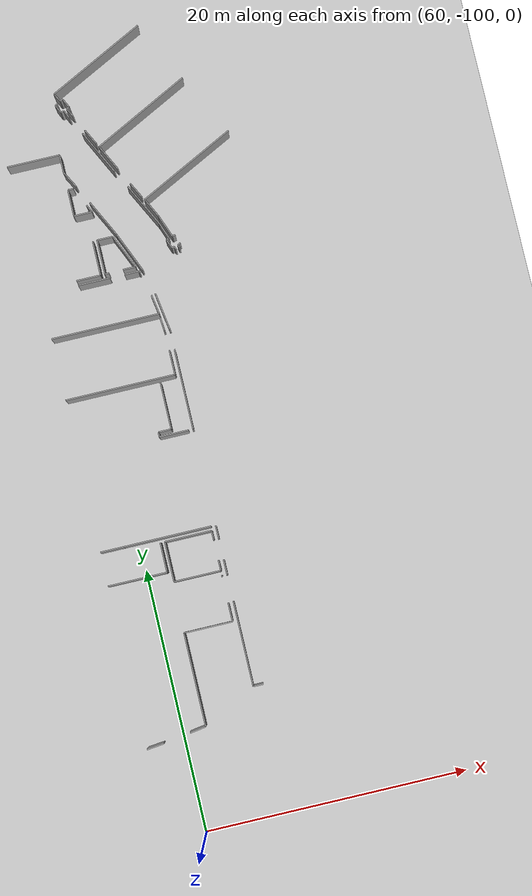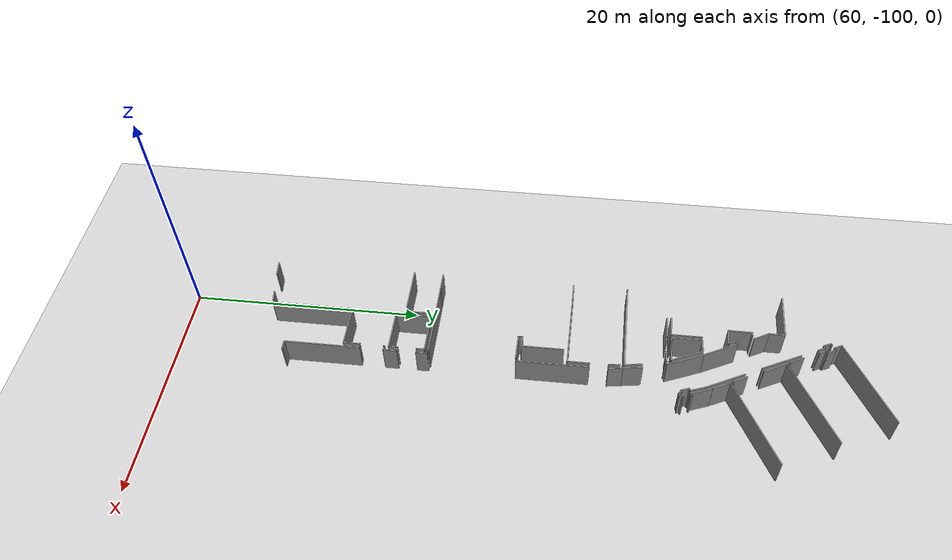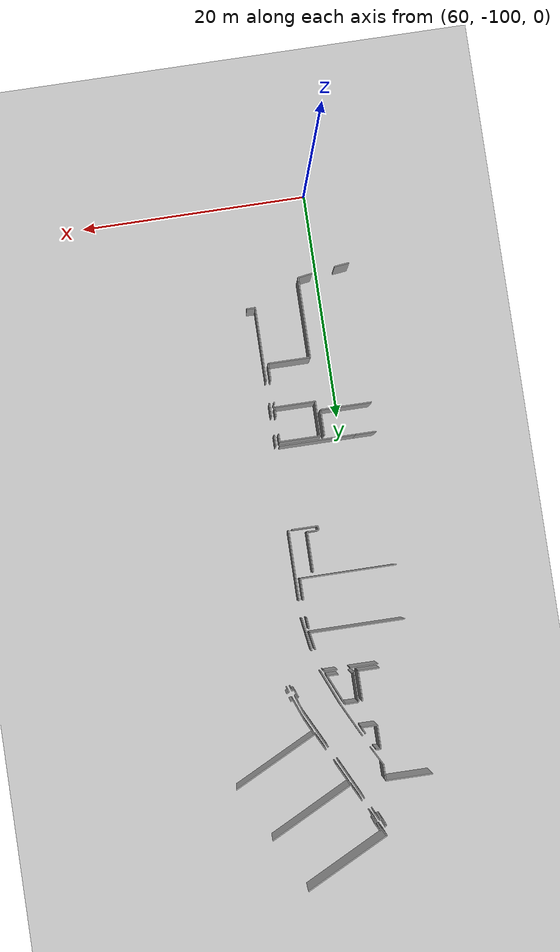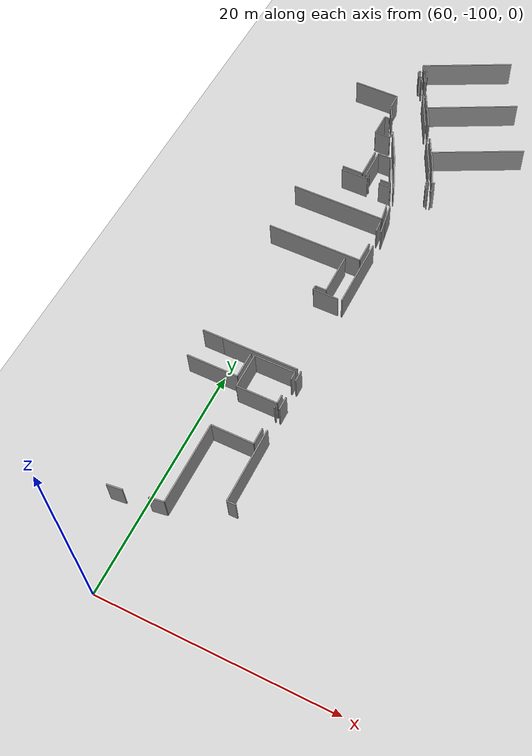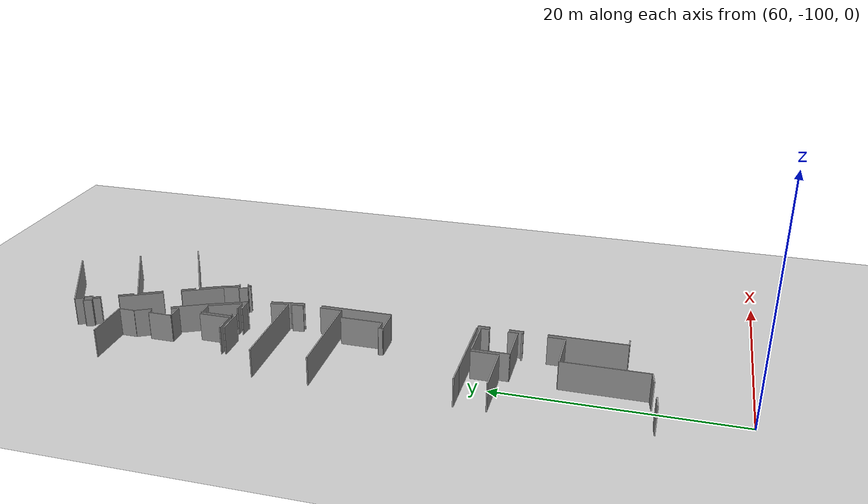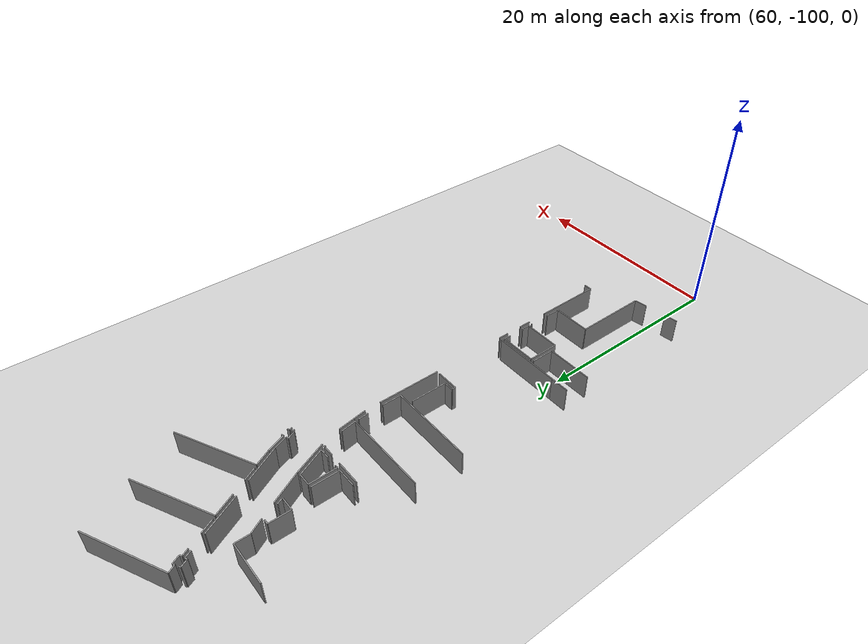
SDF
<sdf version="1.6">
 <world name="default">
  <model name="ground_plane">
   <static>1</static>
   <link name="link">
    <collision name="collision">
     <geometry><plane><normal>0 0 1</normal><size>100 100</size></plane></geometry>
     <surface><friction><ode><mu>100</mu><mu2>50</mu2></ode></friction></surface>
    </collision>
    <visual name="visual">
     <cast_shadows>0</cast_shadows>
     <geometry><plane><normal>0 0 1</normal><size>100 100</size></plane></geometry>
     <material>
      <script><uri>file://media/materials/scripts/gazebo.material</uri><name>Gazebo/Grey</name></script>
     </material>
    </visual>
   </link>
  </model>
  <model name="0510045926_A-40">
   <static>1</static>
   <link name="Wall_2004">
    <collision name="Wall_2004_Collision">
     <geometry><box><size>2.27232632962 0.1 2.5</size></box></geometry>
     <pose>1.13616316481 0 1.25 0 0 0</pose>
    </collision>
    <visual name="Wall_2004_Visual">
     <pose>1.13616316481 0 1.25 0 0 0</pose>
     <geometry><box><size>2.27232632962 0.1 2.5</size></box></geometry>
     <material>
      <script><uri>file://media/materials/scripts/gazebo.material</uri><name>Gazebo/Grey</name></script>
      <ambient>1 1 1 1</ambient>
     </material>
    </visual>
    <pose>195.540914946 -179.373460335 0 0 0 -1.57079632679</pose>
   </link>
   <link name="Wall_2005">
    <collision name="Wall_2005_Collision">
     <geometry><box><size>4.50505447923 0.1 2.5</size></box></geometry>
     <pose>2.25252723961 0 1.25 0 0 0</pose>
    </collision>
    <visual name="Wall_2005_Visual">
     <pose>2.25252723961 0 1.25 0 0 0</pose>
     <geometry><box><size>4.50505447923 0.1 2.5</size></box></geometry>
     <material>
      <script><uri>file://media/materials/scripts/gazebo.material</uri><name>Gazebo/Grey</name></script>
      <ambient>1 1 1 1</ambient>
     </material>
    </visual>
    <pose>195.540914946 -181.645786665 0 0 0 3.14159265359</pose>
   </link>
   <link name="Wall_2008">
    <collision name="Wall_2008_Collision">
     <geometry><box><size>1.79765583851 0.1 2.5</size></box></geometry>
     <pose>0.898827919255 0 1.25 0 0 0</pose>
    </collision>
    <visual name="Wall_2008_Visual">
     <pose>0.898827919255 0 1.25 0 0 0</pose>
     <geometry><box><size>1.79765583851 0.1 2.5</size></box></geometry>
     <material>
      <script><uri>file://media/materials/scripts/gazebo.material</uri><name>Gazebo/Grey</name></script>
      <ambient>1 1 1 1</ambient>
     </material>
    </visual>
    <pose>192.834023975 -179.05692873 0 0 0 3.14159265359</pose>
   </link>
   <link name="Wall_2012">
    <collision name="Wall_2012_Collision">
     <geometry><box><size>3.57119740073 0.1 2.5</size></box></geometry>
     <pose>1.78559870037 0 1.25 0 0 0</pose>
    </collision>
    <visual name="Wall_2012_Visual">
     <pose>1.78559870037 0 1.25 0 0 0</pose>
     <geometry><box><size>3.57119740073 0.1 2.5</size></box></geometry>
     <material>
      <script><uri>file://media/materials/scripts/gazebo.material</uri><name>Gazebo/Grey</name></script>
      <ambient>1 1 1 1</ambient>
     </material>
    </visual>
    <pose>198.258974636 -167.727280227 0 0 0 -1.57079632679</pose>
   </link>
   <link name="Wall_2013">
    <collision name="Wall_2013_Collision">
     <geometry><box><size>0.987416155296 0.1 2.5</size></box></geometry>
     <pose>0.493708077648 0 1.25 0 0 0</pose>
    </collision>
    <visual name="Wall_2013_Visual">
     <pose>0.493708077648 0 1.25 0 0 0</pose>
     <geometry><box><size>0.987416155296 0.1 2.5</size></box></geometry>
     <material>
      <script><uri>file://media/materials/scripts/gazebo.material</uri><name>Gazebo/Grey</name></script>
      <ambient>1 1 1 1</ambient>
     </material>
    </visual>
    <pose>198.258974636 -171.298477628 0 0 0 3.14159265359</pose>
   </link>
   <link name="Wall_2014">
    <collision name="Wall_2014_Collision">
     <geometry><box><size>0.36831384096 0.1 2.5</size></box></geometry>
     <pose>0.18415692048 0 1.25 0 0 0</pose>
    </collision>
    <visual name="Wall_2014_Visual">
     <pose>0.18415692048 0 1.25 0 0 0</pose>
     <geometry><box><size>0.36831384096 0.1 2.5</size></box></geometry>
     <material>
      <script><uri>file://media/materials/scripts/gazebo.material</uri><name>Gazebo/Grey</name></script>
      <ambient>1 1 1 1</ambient>
     </material>
    </visual>
    <pose>197.27155848 -171.298477628 0 0 0 -1.57079632679</pose>
   </link>
   <link name="Wall_2015">
    <collision name="Wall_2015_Collision">
     <geometry><box><size>2.23678950141 0.1 2.5</size></box></geometry>
     <pose>1.1183947507 0 1.25 0 0 0</pose>
    </collision>
    <visual name="Wall_2015_Visual">
     <pose>1.1183947507 0 1.25 0 0 0</pose>
     <geometry><box><size>2.23678950141 0.1 2.5</size></box></geometry>
     <material>
      <script><uri>file://media/materials/scripts/gazebo.material</uri><name>Gazebo/Grey</name></script>
      <ambient>1 1 1 1</ambient>
     </material>
    </visual>
    <pose>197.27155848 -171.666791469 0 0 0 0.0</pose>
   </link>
   <link name="Wall_2016">
    <collision name="Wall_2016_Collision">
     <geometry><box><size>6.67432459108 0.1 2.5</size></box></geometry>
     <pose>3.33716229554 0 1.25 0 0 0</pose>
    </collision>
    <visual name="Wall_2016_Visual">
     <pose>3.33716229554 0 1.25 0 0 0</pose>
     <geometry><box><size>6.67432459108 0.1 2.5</size></box></geometry>
     <material>
      <script><uri>file://media/materials/scripts/gazebo.material</uri><name>Gazebo/Grey</name></script>
      <ambient>1 1 1 1</ambient>
     </material>
    </visual>
    <pose>199.508347982 -179.05413655 0 0 0 -3.14117430722</pose>
   </link>
   <link name="Wall_2020">
    <collision name="Wall_2020_Collision">
     <geometry><box><size>0.999817925139 0.1 2.5</size></box></geometry>
     <pose>0.49990896257 0 1.25 0 0 0</pose>
    </collision>
    <visual name="Wall_2020_Visual">
     <pose>0.49990896257 0 1.25 0 0 0</pose>
     <geometry><box><size>0.999817925139 0.1 2.5</size></box></geometry>
     <material>
      <script><uri>file://media/materials/scripts/gazebo.material</uri><name>Gazebo/Grey</name></script>
      <ambient>1 1 1 1</ambient>
     </material>
    </visual>
    <pose>199.347924586 -162.954176529 0 0 0 -1.489974298</pose>
   </link>
   <link name="Wall_2021">
    <collision name="Wall_2021_Collision">
     <geometry><box><size>1.89030542635 0.1 2.5</size></box></geometry>
     <pose>0.945152713173 0 1.25 0 0 0</pose>
    </collision>
    <visual name="Wall_2021_Visual">
     <pose>0.945152713173 0 1.25 0 0 0</pose>
     <geometry><box><size>1.89030542635 0.1 2.5</size></box></geometry>
     <material>
      <script><uri>file://media/materials/scripts/gazebo.material</uri><name>Gazebo/Grey</name></script>
      <ambient>1 1 1 1</ambient>
     </material>
    </visual>
    <pose>199.459104091 -165.471199304 0 0 0 -1.57079632679</pose>
   </link>
   <link name="Wall_2022">
    <collision name="Wall_2022_Collision">
     <geometry><box><size>8.40929891316 0.1 2.5</size></box></geometry>
     <pose>4.20464945658 0 1.25 0 0 0</pose>
    </collision>
    <visual name="Wall_2022_Visual">
     <pose>4.20464945658 0 1.25 0 0 0</pose>
     <geometry><box><size>8.40929891316 0.1 2.5</size></box></geometry>
     <material>
      <script><uri>file://media/materials/scripts/gazebo.material</uri><name>Gazebo/Grey</name></script>
      <ambient>1 1 1 1</ambient>
     </material>
    </visual>
    <pose>199.459104091 -167.361504731 0 0 0 -3.13963062888</pose>
   </link>
   <link name="Wall_2045">
    <collision name="Wall_2045_Collision">
     <geometry><box><size>0.133263105792 0.1 2.5</size></box></geometry>
     <pose>0.0666315528959 0 1.25 0 0 0</pose>
    </collision>
    <visual name="Wall_2045_Visual">
     <pose>0.0666315528959 0 1.25 0 0 0</pose>
     <geometry><box><size>0.133263105792 0.1 2.5</size></box></geometry>
     <material>
      <script><uri>file://media/materials/scripts/gazebo.material</uri><name>Gazebo/Grey</name></script>
      <ambient>1 1 1 1</ambient>
     </material>
    </visual>
    <pose>199.445650863 -182.757327884 0 0 0 -1.57079632679</pose>
   </link>
   <link name="Wall_2046">
    <collision name="Wall_2046_Collision">
     <geometry><box><size>1.44076454948 0.1 2.5</size></box></geometry>
     <pose>0.720382274738 0 1.25 0 0 0</pose>
    </collision>
    <visual name="Wall_2046_Visual">
     <pose>0.720382274738 0 1.25 0 0 0</pose>
     <geometry><box><size>1.44076454948 0.1 2.5</size></box></geometry>
     <material>
      <script><uri>file://media/materials/scripts/gazebo.material</uri><name>Gazebo/Grey</name></script>
      <ambient>1 1 1 1</ambient>
     </material>
    </visual>
    <pose>199.445650863 -184.864407963 0 0 0 -1.57079632679</pose>
   </link>
   <link name="Wall_2047">
    <collision name="Wall_2047_Collision">
     <geometry><box><size>3.69684547191 0.1 2.5</size></box></geometry>
     <pose>1.84842273596 0 1.25 0 0 0</pose>
    </collision>
    <visual name="Wall_2047_Visual">
     <pose>1.84842273596 0 1.25 0 0 0</pose>
     <geometry><box><size>3.69684547191 0.1 2.5</size></box></geometry>
     <material>
      <script><uri>file://media/materials/scripts/gazebo.material</uri><name>Gazebo/Grey</name></script>
      <ambient>1 1 1 1</ambient>
     </material>
    </visual>
    <pose>199.445650863 -186.305172512 0 0 0 3.14159265359</pose>
   </link>
   <link name="Wall_2048">
    <collision name="Wall_2048_Collision">
     <geometry><box><size>7.08071302107 0.1 2.5</size></box></geometry>
     <pose>3.54035651054 0 1.25 0 0 0</pose>
    </collision>
    <visual name="Wall_2048_Visual">
     <pose>3.54035651054 0 1.25 0 0 0</pose>
     <geometry><box><size>7.08071302107 0.1 2.5</size></box></geometry>
     <material>
      <script><uri>file://media/materials/scripts/gazebo.material</uri><name>Gazebo/Grey</name></script>
      <ambient>1 1 1 1</ambient>
     </material>
    </visual>
    <pose>195.748805391 -186.305172512 0 0 0 -1.57079632679</pose>
   </link>
   <link name="Wall_2049">
    <collision name="Wall_2049_Collision">
     <geometry><box><size>1.24605860579 0.1 2.5</size></box></geometry>
     <pose>0.623029302894 0 1.25 0 0 0</pose>
    </collision>
    <visual name="Wall_2049_Visual">
     <pose>0.623029302894 0 1.25 0 0 0</pose>
     <geometry><box><size>1.24605860579 0.1 2.5</size></box></geometry>
     <material>
      <script><uri>file://media/materials/scripts/gazebo.material</uri><name>Gazebo/Grey</name></script>
      <ambient>1 1 1 1</ambient>
     </material>
    </visual>
    <pose>195.748805391 -193.385885533 0 0 0 -2.98779722939</pose>
   </link>
   <link name="Wall_2050">
    <collision name="Wall_2050_Collision">
     <geometry><box><size>1.31831349864 0.1 2.5</size></box></geometry>
     <pose>0.659156749321 0 1.25 0 0 0</pose>
    </collision>
    <visual name="Wall_2050_Visual">
     <pose>0.659156749321 0 1.25 0 0 0</pose>
     <geometry><box><size>1.31831349864 0.1 2.5</size></box></geometry>
     <material>
      <script><uri>file://media/materials/scripts/gazebo.material</uri><name>Gazebo/Grey</name></script>
      <ambient>1 1 1 1</ambient>
     </material>
    </visual>
    <pose>192.465710134 -193.882131956 0 0 0 -3.03123311474</pose>
   </link>
   <link name="Wall_2054">
    <collision name="Wall_2054_Collision">
     <geometry><box><size>2.45001047067 0.1 2.5</size></box></geometry>
     <pose>1.22500523534 0 1.25 0 0 0</pose>
    </collision>
    <visual name="Wall_2054_Visual">
     <pose>1.22500523534 0 1.25 0 0 0</pose>
     <geometry><box><size>2.45001047067 0.1 2.5</size></box></geometry>
     <material>
      <script><uri>file://media/materials/scripts/gazebo.material</uri><name>Gazebo/Grey</name></script>
      <ambient>1 1 1 1</ambient>
     </material>
    </visual>
    <pose>193.905205511 -159.122544945 0 0 0 0.0</pose>
   </link>
   <link name="Wall_2055">
    <collision name="Wall_2055_Collision">
     <geometry><box><size>1.08793461224 0.1 2.5</size></box></geometry>
     <pose>0.543967306118 0 1.25 0 0 0</pose>
    </collision>
    <visual name="Wall_2055_Visual">
     <pose>0.543967306118 0 1.25 0 0 0</pose>
     <geometry><box><size>1.08793461224 0.1 2.5</size></box></geometry>
     <material>
      <script><uri>file://media/materials/scripts/gazebo.material</uri><name>Gazebo/Grey</name></script>
      <ambient>1 1 1 1</ambient>
     </material>
    </visual>
    <pose>197.477164415 -159.122544945 0 0 0 0.0</pose>
   </link>
   <link name="Wall_2056">
    <collision name="Wall_2056_Collision">
     <geometry><box><size>0.124048215301 0.1 2.5</size></box></geometry>
     <pose>0.0620241076503 0 1.25 0 0 0</pose>
    </collision>
    <visual name="Wall_2056_Visual">
     <pose>0.0620241076503 0 1.25 0 0 0</pose>
     <geometry><box><size>0.124048215301 0.1 2.5</size></box></geometry>
     <material>
      <script><uri>file://media/materials/scripts/gazebo.material</uri><name>Gazebo/Grey</name></script>
      <ambient>1 1 1 1</ambient>
     </material>
    </visual>
    <pose>198.565099027 -159.122544945 0 0 0 -1.0503811777</pose>
   </link>
   <link name="Wall_2057">
    <collision name="Wall_2057_Collision">
     <geometry><box><size>1.52678036356 0.1 2.5</size></box></geometry>
     <pose>0.763390181782 0 1.25 0 0 0</pose>
    </collision>
    <visual name="Wall_2057_Visual">
     <pose>0.763390181782 0 1.25 0 0 0</pose>
     <geometry><box><size>1.52678036356 0.1 2.5</size></box></geometry>
     <material>
      <script><uri>file://media/materials/scripts/gazebo.material</uri><name>Gazebo/Grey</name></script>
      <ambient>1 1 1 1</ambient>
     </material>
    </visual>
    <pose>199.083936719 -161.109815145 0 0 0 -1.40562031727</pose>
   </link>
   <link name="Wall_2058">
    <collision name="Wall_2058_Collision">
     <geometry><box><size>8.29431112051 0.1 2.5</size></box></geometry>
     <pose>4.14715556026 0 1.25 0 0 0</pose>
    </collision>
    <visual name="Wall_2058_Visual">
     <pose>4.14715556026 0 1.25 0 0 0</pose>
     <geometry><box><size>8.29431112051 0.1 2.5</size></box></geometry>
     <material>
      <script><uri>file://media/materials/scripts/gazebo.material</uri><name>Gazebo/Grey</name></script>
      <ambient>1 1 1 1</ambient>
     </material>
    </visual>
    <pose>199.334979027 -162.615815158 0 0 0 -3.13966463541</pose>
   </link>
   <link name="Wall_2087">
    <collision name="Wall_2087_Collision">
     <geometry><box><size>8.24091747251 0.1 2.5</size></box></geometry>
     <pose>4.12045873625 0 1.25 0 0 0</pose>
    </collision>
    <visual name="Wall_2087_Visual">
     <pose>4.12045873625 0 1.25 0 0 0</pose>
     <geometry><box><size>8.24091747251 0.1 2.5</size></box></geometry>
     <material>
      <script><uri>file://media/materials/scripts/gazebo.material</uri><name>Gazebo/Grey</name></script>
      <ambient>1 1 1 1</ambient>
     </material>
    </visual>
    <pose>195.376684033 -144.46994917 0 0 0 0.467504604821</pose>
   </link>
   <link name="Wall_2092">
    <collision name="Wall_2092_Collision">
     <geometry><box><size>1.34263716694 0.1 2.5</size></box></geometry>
     <pose>0.671318583471 0 1.25 0 0 0</pose>
    </collision>
    <visual name="Wall_2092_Visual">
     <pose>0.671318583471 0 1.25 0 0 0</pose>
     <geometry><box><size>1.34263716694 0.1 2.5</size></box></geometry>
     <material>
      <script><uri>file://media/materials/scripts/gazebo.material</uri><name>Gazebo/Grey</name></script>
      <ambient>1 1 1 1</ambient>
     </material>
    </visual>
    <pose>197.632764956 -148.90494533 0 0 0 2.04365987509</pose>
   </link>
   <link name="Wall_2093">
    <collision name="Wall_2093_Collision">
     <geometry><box><size>0.668626154683 0.1 2.5</size></box></geometry>
     <pose>0.334313077342 0 1.25 0 0 0</pose>
    </collision>
    <visual name="Wall_2093_Visual">
     <pose>0.334313077342 0 1.25 0 0 0</pose>
     <geometry><box><size>0.668626154683 0.1 2.5</size></box></geometry>
     <material>
      <script><uri>file://media/materials/scripts/gazebo.material</uri><name>Gazebo/Grey</name></script>
      <ambient>1 1 1 1</ambient>
     </material>
    </visual>
    <pose>196.382883941 -146.401375783 0 0 0 2.06653754978</pose>
   </link>
   <link name="Wall_2094">
    <collision name="Wall_2094_Collision">
     <geometry><box><size>0.229088823995 0.1 2.5</size></box></geometry>
     <pose>0.114544411997 0 1.25 0 0 0</pose>
    </collision>
    <visual name="Wall_2094_Visual">
     <pose>0.114544411997 0 1.25 0 0 0</pose>
     <geometry><box><size>0.229088823995 0.1 2.5</size></box></geometry>
     <material>
      <script><uri>file://media/materials/scripts/gazebo.material</uri><name>Gazebo/Grey</name></script>
      <ambient>1 1 1 1</ambient>
     </material>
    </visual>
    <pose>196.064829328 -145.813241276 0 0 0 0.593841504617</pose>
   </link>
   <link name="Wall_2095">
    <collision name="Wall_2095_Collision">
     <geometry><box><size>0.766832683537 0.1 2.5</size></box></geometry>
     <pose>0.383416341768 0 1.25 0 0 0</pose>
    </collision>
    <visual name="Wall_2095_Visual">
     <pose>0.383416341768 0 1.25 0 0 0</pose>
     <geometry><box><size>0.766832683537 0.1 2.5</size></box></geometry>
     <material>
      <script><uri>file://media/materials/scripts/gazebo.material</uri><name>Gazebo/Grey</name></script>
      <ambient>1 1 1 1</ambient>
     </material>
    </visual>
    <pose>196.254697524 -145.68505486 0 0 0 2.02778230229</pose>
   </link>
   <link name="Wall_2096">
    <collision name="Wall_2096_Collision">
     <geometry><box><size>0.225086076641 0.1 2.5</size></box></geometry>
     <pose>0.11254303832 0 1.25 0 0 0</pose>
    </collision>
    <visual name="Wall_2096_Visual">
     <pose>0.11254303832 0 1.25 0 0 0</pose>
     <geometry><box><size>0.225086076641 0.1 2.5</size></box></geometry>
     <material>
      <script><uri>file://media/materials/scripts/gazebo.material</uri><name>Gazebo/Grey</name></script>
      <ambient>1 1 1 1</ambient>
     </material>
    </visual>
    <pose>195.916336153 -144.996909565 0 0 0 -2.615872288</pose>
   </link>
   <link name="Wall_2097">
    <collision name="Wall_2097_Collision">
     <geometry><box><size>0.72697426061 0.1 2.5</size></box></geometry>
     <pose>0.363487130305 0 1.25 0 0 0</pose>
    </collision>
    <visual name="Wall_2097_Visual">
     <pose>0.363487130305 0 1.25 0 0 0</pose>
     <geometry><box><size>0.72697426061 0.1 2.5</size></box></geometry>
     <material>
      <script><uri>file://media/materials/scripts/gazebo.material</uri><name>Gazebo/Grey</name></script>
      <ambient>1 1 1 1</ambient>
     </material>
    </visual>
    <pose>195.721645101 -145.109865912 0 0 0 2.06521066546</pose>
   </link>
   <link name="Wall_2098">
    <collision name="Wall_2098_Collision">
     <geometry><box><size>8.21809574927 0.1 2.5</size></box></geometry>
     <pose>4.10904787464 0 1.25 0 0 0</pose>
    </collision>
    <visual name="Wall_2098_Visual">
     <pose>4.10904787464 0 1.25 0 0 0</pose>
     <geometry><box><size>8.21809574927 0.1 2.5</size></box></geometry>
     <material>
      <script><uri>file://media/materials/scripts/gazebo.material</uri><name>Gazebo/Grey</name></script>
      <ambient>1 1 1 1</ambient>
     </material>
    </visual>
    <pose>197.800295717 -149.19000146 0 0 0 0.470084606552</pose>
   </link>
   <link name="Wall_2103">
    <collision name="Wall_2103_Collision">
     <geometry><box><size>1.31536717782 0.1 2.5</size></box></geometry>
     <pose>0.657683588908 0 1.25 0 0 0</pose>
    </collision>
    <visual name="Wall_2103_Visual">
     <pose>0.657683588908 0 1.25 0 0 0</pose>
     <geometry><box><size>1.31536717782 0.1 2.5</size></box></geometry>
     <material>
      <script><uri>file://media/materials/scripts/gazebo.material</uri><name>Gazebo/Grey</name></script>
      <ambient>1 1 1 1</ambient>
     </material>
    </visual>
    <pose>200.060691826 -153.651650241 0 0 0 2.04928834854</pose>
   </link>
   <link name="Wall_2104">
    <collision name="Wall_2104_Collision">
     <geometry><box><size>2.17841963695 0.1 2.5</size></box></geometry>
     <pose>1.08920981847 0 1.25 0 0 0</pose>
    </collision>
    <visual name="Wall_2104_Visual">
     <pose>1.08920981847 0 1.25 0 0 0</pose>
     <geometry><box><size>2.17841963695 0.1 2.5</size></box></geometry>
     <material>
      <script><uri>file://media/materials/scripts/gazebo.material</uri><name>Gazebo/Grey</name></script>
      <ambient>1 1 1 1</ambient>
     </material>
    </visual>
    <pose>198.778573831 -151.136404308 0 0 0 2.03652835175</pose>
   </link>
   <link name="Wall_2105">
    <collision name="Wall_2105_Collision">
     <geometry><box><size>1.38593630024 0.1 2.5</size></box></geometry>
     <pose>0.692968150118 0 1.25 0 0 0</pose>
    </collision>
    <visual name="Wall_2105_Visual">
     <pose>0.692968150118 0 1.25 0 0 0</pose>
     <geometry><box><size>1.38593630024 0.1 2.5</size></box></geometry>
     <material>
      <script><uri>file://media/materials/scripts/gazebo.material</uri><name>Gazebo/Grey</name></script>
      <ambient>1 1 1 1</ambient>
     </material>
    </visual>
    <pose>196.151386888 -153.914368936 0 0 0 3.14159265359</pose>
   </link>
   <link name="Wall_2106">
    <collision name="Wall_2106_Collision">
     <geometry><box><size>2.04133694624 0.1 2.5</size></box></geometry>
     <pose>1.02066847312 0 1.25 0 0 0</pose>
    </collision>
    <visual name="Wall_2106_Visual">
     <pose>1.02066847312 0 1.25 0 0 0</pose>
     <geometry><box><size>2.04133694624 0.1 2.5</size></box></geometry>
     <material>
      <script><uri>file://media/materials/scripts/gazebo.material</uri><name>Gazebo/Grey</name></script>
      <ambient>1 1 1 1</ambient>
     </material>
    </visual>
    <pose>194.765450588 -153.914368936 0 0 0 1.57079632679</pose>
   </link>
   <link name="Wall_2107">
    <collision name="Wall_2107_Collision">
     <geometry><box><size>0.431518628278 0.1 2.5</size></box></geometry>
     <pose>0.215759314139 0 1.25 0 0 0</pose>
    </collision>
    <visual name="Wall_2107_Visual">
     <pose>0.215759314139 0 1.25 0 0 0</pose>
     <geometry><box><size>0.431518628278 0.1 2.5</size></box></geometry>
     <material>
      <script><uri>file://media/materials/scripts/gazebo.material</uri><name>Gazebo/Grey</name></script>
      <ambient>1 1 1 1</ambient>
     </material>
    </visual>
    <pose>194.765450588 -151.873031989 0 0 0 0.0</pose>
   </link>
   <link name="Wall_2108">
    <collision name="Wall_2108_Collision">
     <geometry><box><size>0.629605988262 0.1 2.5</size></box></geometry>
     <pose>0.314802994131 0 1.25 0 0 0</pose>
    </collision>
    <visual name="Wall_2108_Visual">
     <pose>0.314802994131 0 1.25 0 0 0</pose>
     <geometry><box><size>0.629605988262 0.1 2.5</size></box></geometry>
     <material>
      <script><uri>file://media/materials/scripts/gazebo.material</uri><name>Gazebo/Grey</name></script>
      <ambient>1 1 1 1</ambient>
     </material>
    </visual>
    <pose>195.882068497 -153.345272015 0 0 0 -1.12878645842</pose>
   </link>
   <link name="Wall_2109">
    <collision name="Wall_2109_Collision">
     <geometry><box><size>8.2148763147 0.1 2.5</size></box></geometry>
     <pose>4.10743815735 0 1.25 0 0 0</pose>
    </collision>
    <visual name="Wall_2109_Visual">
     <pose>4.10743815735 0 1.25 0 0 0</pose>
     <geometry><box><size>8.2148763147 0.1 2.5</size></box></geometry>
     <material>
      <script><uri>file://media/materials/scripts/gazebo.material</uri><name>Gazebo/Grey</name></script>
      <ambient>1 1 1 1</ambient>
     </material>
    </visual>
    <pose>200.239898974 -153.911830591 0 0 0 0.465609853947</pose>
   </link>
   <link name="Wall_2117">
    <collision name="Wall_2117_Collision">
     <geometry><box><size>0.2505387537 0.1 2.5</size></box></geometry>
     <pose>0.12526937685 0 1.25 0 0 0</pose>
    </collision>
    <visual name="Wall_2117_Visual">
     <pose>0.12526937685 0 1.25 0 0 0</pose>
     <geometry><box><size>0.2505387537 0.1 2.5</size></box></geometry>
     <material>
      <script><uri>file://media/materials/scripts/gazebo.material</uri><name>Gazebo/Grey</name></script>
      <ambient>1 1 1 1</ambient>
     </material>
    </visual>
    <pose>201.970288673 -158.087915575 0 0 0 1.88069226192</pose>
   </link>
   <link name="Wall_2118">
    <collision name="Wall_2118_Collision">
     <geometry><box><size>0.236670952711 0.1 2.5</size></box></geometry>
     <pose>0.118335476356 0 1.25 0 0 0</pose>
    </collision>
    <visual name="Wall_2118_Visual">
     <pose>0.118335476356 0 1.25 0 0 0</pose>
     <geometry><box><size>0.236670952711 0.1 2.5</size></box></geometry>
     <material>
      <script><uri>file://media/materials/scripts/gazebo.material</uri><name>Gazebo/Grey</name></script>
      <ambient>1 1 1 1</ambient>
     </material>
    </visual>
    <pose>201.893884493 -157.849311157 0 0 0 0.524600363739</pose>
   </link>
   <link name="Wall_2120">
    <collision name="Wall_2120_Collision">
     <geometry><box><size>0.240123668347 0.1 2.5</size></box></geometry>
     <pose>0.120061834174 0 1.25 0 0 0</pose>
    </collision>
    <visual name="Wall_2120_Visual">
     <pose>0.120061834174 0 1.25 0 0 0</pose>
     <geometry><box><size>0.240123668347 0.1 2.5</size></box></geometry>
     <material>
      <script><uri>file://media/materials/scripts/gazebo.material</uri><name>Gazebo/Grey</name></script>
      <ambient>1 1 1 1</ambient>
     </material>
    </visual>
    <pose>201.862916685 -157.039325308 0 0 0 -2.77168658613</pose>
   </link>
   <link name="Wall_2121">
    <collision name="Wall_2121_Collision">
     <geometry><box><size>1.87081095426 0.1 2.5</size></box></geometry>
     <pose>0.93540547713 0 1.25 0 0 0</pose>
    </collision>
    <visual name="Wall_2121_Visual">
     <pose>0.93540547713 0 1.25 0 0 0</pose>
     <geometry><box><size>1.87081095426 0.1 2.5</size></box></geometry>
     <material>
      <script><uri>file://media/materials/scripts/gazebo.material</uri><name>Gazebo/Grey</name></script>
      <ambient>1 1 1 1</ambient>
     </material>
    </visual>
    <pose>201.639034667 -157.126136703 0 0 0 1.9375707646</pose>
   </link>
   <link name="Wall_2122">
    <collision name="Wall_2122_Collision">
     <geometry><box><size>1.63864366573 0.1 2.5</size></box></geometry>
     <pose>0.819321832866 0 1.25 0 0 0</pose>
    </collision>
    <visual name="Wall_2122_Visual">
     <pose>0.819321832866 0 1.25 0 0 0</pose>
     <geometry><box><size>1.63864366573 0.1 2.5</size></box></geometry>
     <material>
      <script><uri>file://media/materials/scripts/gazebo.material</uri><name>Gazebo/Grey</name></script>
      <ambient>1 1 1 1</ambient>
     </material>
    </visual>
    <pose>200.968150118 -155.37975543 0 0 0 2.03132652296</pose>
   </link>
   <link name="Wall_2127">
    <collision name="Wall_2127_Collision">
     <geometry><box><size>2.65637790878 0.1 2.5</size></box></geometry>
     <pose>1.32818895439 0 1.25 0 0 0</pose>
    </collision>
    <visual name="Wall_2127_Visual">
     <pose>1.32818895439 0 1.25 0 0 0</pose>
     <geometry><box><size>2.65637790878 0.1 2.5</size></box></geometry>
     <material>
      <script><uri>file://media/materials/scripts/gazebo.material</uri><name>Gazebo/Grey</name></script>
      <ambient>1 1 1 1</ambient>
     </material>
    </visual>
    <pose>195.711491722 -156.111306423 0 0 0 -1.57079632679</pose>
   </link>
   <link name="Wall_2128">
    <collision name="Wall_2128_Collision">
     <geometry><box><size>1.86390663968 0.1 2.5</size></box></geometry>
     <pose>0.931953319838 0 1.25 0 0 0</pose>
    </collision>
    <visual name="Wall_2128_Visual">
     <pose>0.931953319838 0 1.25 0 0 0</pose>
     <geometry><box><size>1.86390663968 0.1 2.5</size></box></geometry>
     <material>
      <script><uri>file://media/materials/scripts/gazebo.material</uri><name>Gazebo/Grey</name></script>
      <ambient>1 1 1 1</ambient>
     </material>
    </visual>
    <pose>195.711491722 -158.767684331 0 0 0 3.14159265359</pose>
   </link>
   <link name="Wall_2130">
    <collision name="Wall_2130_Collision">
     <geometry><box><size>2.66450061238 0.1 2.5</size></box></geometry>
     <pose>1.33225030619 0 1.25 0 0 0</pose>
    </collision>
    <visual name="Wall_2130_Visual">
     <pose>1.33225030619 0 1.25 0 0 0</pose>
     <geometry><box><size>2.66450061238 0.1 2.5</size></box></geometry>
     <material>
      <script><uri>file://media/materials/scripts/gazebo.material</uri><name>Gazebo/Grey</name></script>
      <ambient>1 1 1 1</ambient>
     </material>
    </visual>
    <pose>196.053914445 -158.774537863 0 0 0 1.57079632679</pose>
   </link>
   <link name="Wall_2131">
    <collision name="Wall_2131_Collision">
     <geometry><box><size>1.19835261418 0.1 2.5</size></box></geometry>
     <pose>0.599176307089 0 1.25 0 0 0</pose>
    </collision>
    <visual name="Wall_2131_Visual">
     <pose>0.599176307089 0 1.25 0 0 0</pose>
     <geometry><box><size>1.19835261418 0.1 2.5</size></box></geometry>
     <material>
      <script><uri>file://media/materials/scripts/gazebo.material</uri><name>Gazebo/Grey</name></script>
      <ambient>1 1 1 1</ambient>
     </material>
    </visual>
    <pose>196.053914445 -156.11003725 0 0 0 0.0</pose>
   </link>
   <link name="Wall_2132">
    <collision name="Wall_2132_Collision">
     <geometry><box><size>2.87140095246 0.1 2.5</size></box></geometry>
     <pose>1.43570047623 0 1.25 0 0 0</pose>
    </collision>
    <visual name="Wall_2132_Visual">
     <pose>1.43570047623 0 1.25 0 0 0</pose>
     <geometry><box><size>2.87140095246 0.1 2.5</size></box></geometry>
     <material>
      <script><uri>file://media/materials/scripts/gazebo.material</uri><name>Gazebo/Grey</name></script>
      <ambient>1 1 1 1</ambient>
     </material>
    </visual>
    <pose>197.252267059 -156.11003725 0 0 0 -1.15472617974</pose>
   </link>
   <link name="Wall_2133">
    <collision name="Wall_2133_Collision">
     <geometry><box><size>0.965586389395 0.1 2.5</size></box></geometry>
     <pose>0.482793194697 0 1.25 0 0 0</pose>
    </collision>
    <visual name="Wall_2133_Visual">
     <pose>0.482793194697 0 1.25 0 0 0</pose>
     <geometry><box><size>0.965586389395 0.1 2.5</size></box></geometry>
     <material>
      <script><uri>file://media/materials/scripts/gazebo.material</uri><name>Gazebo/Grey</name></script>
      <ambient>1 1 1 1</ambient>
     </material>
    </visual>
    <pose>198.412798335 -158.73646269 0 0 0 3.14159265359</pose>
   </link>
   <link name="Wall_2134">
    <collision name="Wall_2134_Collision">
     <geometry><box><size>0.311758045699 0.1 2.5</size></box></geometry>
     <pose>0.15587902285 0 1.25 0 0 0</pose>
    </collision>
    <visual name="Wall_2134_Visual">
     <pose>0.15587902285 0 1.25 0 0 0</pose>
     <geometry><box><size>0.311758045699 0.1 2.5</size></box></geometry>
     <material>
      <script><uri>file://media/materials/scripts/gazebo.material</uri><name>Gazebo/Grey</name></script>
      <ambient>1 1 1 1</ambient>
     </material>
    </visual>
    <pose>196.363338685 -158.73646269 0 0 0 -3.01915646097</pose>
   </link>
   <link name="Wall_2178">
    <collision name="Wall_2178_Collision">
     <geometry><box><size>3.57703559394 0.1 2.5</size></box></geometry>
     <pose>1.78851779697 0 1.25 0 0 0</pose>
    </collision>
    <visual name="Wall_2178_Visual">
     <pose>1.78851779697 0 1.25 0 0 0</pose>
     <geometry><box><size>3.57703559394 0.1 2.5</size></box></geometry>
     <material>
      <script><uri>file://media/materials/scripts/gazebo.material</uri><name>Gazebo/Grey</name></script>
      <ambient>1 1 1 1</ambient>
     </material>
    </visual>
    <pose>199.462911608 -182.43521192 0 0 0 3.14159265359</pose>
   </link>
   <link name="Wall_2179">
    <collision name="Wall_2179_Collision">
     <geometry><box><size>3.05464421924 0.1 2.5</size></box></geometry>
     <pose>1.52732210962 0 1.25 0 0 0</pose>
    </collision>
    <visual name="Wall_2179_Visual">
     <pose>1.52732210962 0 1.25 0 0 0</pose>
     <geometry><box><size>3.05464421924 0.1 2.5</size></box></geometry>
     <material>
      <script><uri>file://media/materials/scripts/gazebo.material</uri><name>Gazebo/Grey</name></script>
      <ambient>1 1 1 1</ambient>
     </material>
    </visual>
    <pose>195.885876015 -182.43521192 0 0 0 1.57079632679</pose>
   </link>
   <link name="Wall_2180">
    <collision name="Wall_2180_Collision">
     <geometry><box><size>3.57627409048 0.1 2.5</size></box></geometry>
     <pose>1.78813704524 0 1.25 0 0 0</pose>
    </collision>
    <visual name="Wall_2180_Visual">
     <pose>1.78813704524 0 1.25 0 0 0</pose>
     <geometry><box><size>3.57627409048 0.1 2.5</size></box></geometry>
     <material>
      <script><uri>file://media/materials/scripts/gazebo.material</uri><name>Gazebo/Grey</name></script>
      <ambient>1 1 1 1</ambient>
     </material>
    </visual>
    <pose>195.885876015 -179.380567701 0 0 0 0.0</pose>
   </link>
   <link name="Wall_2181">
    <collision name="Wall_2181_Collision">
     <geometry><box><size>0.705406039992 0.1 2.5</size></box></geometry>
     <pose>0.352703019996 0 1.25 0 0 0</pose>
    </collision>
    <visual name="Wall_2181_Visual">
     <pose>0.352703019996 0 1.25 0 0 0</pose>
     <geometry><box><size>0.705406039992 0.1 2.5</size></box></geometry>
     <material>
      <script><uri>file://media/materials/scripts/gazebo.material</uri><name>Gazebo/Grey</name></script>
      <ambient>1 1 1 1</ambient>
     </material>
    </visual>
    <pose>199.462150105 -179.380567701 0 0 0 -1.57079632679</pose>
   </link>
   <link name="Wall_2182">
    <collision name="Wall_2182_Collision">
     <geometry><box><size>0.806432525445 0.1 2.5</size></box></geometry>
     <pose>0.403216262723 0 1.25 0 0 0</pose>
    </collision>
    <visual name="Wall_2182_Visual">
     <pose>0.403216262723 0 1.25 0 0 0</pose>
     <geometry><box><size>0.806432525445 0.1 2.5</size></box></geometry>
     <material>
      <script><uri>file://media/materials/scripts/gazebo.material</uri><name>Gazebo/Grey</name></script>
      <ambient>1 1 1 1</ambient>
     </material>
    </visual>
    <pose>199.462150105 -181.628779754 0 0 0 -1.56985204001</pose>
   </link>
   <link name="Wall_2183">
    <collision name="Wall_2183_Collision">
     <geometry><box><size>0.768103158336 0.1 2.5</size></box></geometry>
     <pose>0.384051579168 0 1.25 0 0 0</pose>
    </collision>
    <visual name="Wall_2183_Visual">
     <pose>0.384051579168 0 1.25 0 0 0</pose>
     <geometry><box><size>0.768103158336 0.1 2.5</size></box></geometry>
     <material>
      <script><uri>file://media/materials/scripts/gazebo.material</uri><name>Gazebo/Grey</name></script>
      <ambient>1 1 1 1</ambient>
     </material>
    </visual>
    <pose>200.615066346 -191.313073111 0 0 0 3.14159265359</pose>
   </link>
   <link name="Wall_2184">
    <collision name="Wall_2184_Collision">
     <geometry><box><size>6.47125641725 0.1 2.5</size></box></geometry>
     <pose>3.23562820863 0 1.25 0 0 0</pose>
    </collision>
    <visual name="Wall_2184_Visual">
     <pose>3.23562820863 0 1.25 0 0 0</pose>
     <geometry><box><size>6.47125641725 0.1 2.5</size></box></geometry>
     <material>
      <script><uri>file://media/materials/scripts/gazebo.material</uri><name>Gazebo/Grey</name></script>
      <ambient>1 1 1 1</ambient>
     </material>
    </visual>
    <pose>199.846963188 -191.313073111 0 0 0 1.57079632679</pose>
   </link>
   <link name="Wall_2185">
    <collision name="Wall_2185_Collision">
     <geometry><box><size>1.1899760761 0.1 2.5</size></box></geometry>
     <pose>0.59498803805 0 1.25 0 0 0</pose>
    </collision>
    <visual name="Wall_2185_Visual">
     <pose>0.59498803805 0 1.25 0 0 0</pose>
     <geometry><box><size>1.1899760761 0.1 2.5</size></box></geometry>
     <material>
      <script><uri>file://media/materials/scripts/gazebo.material</uri><name>Gazebo/Grey</name></script>
      <ambient>1 1 1 1</ambient>
     </material>
    </visual>
    <pose>199.846963188 -182.867999721 0 0 0 1.57079632679</pose>
   </link>
   <link name="Wall_2186">
    <collision name="Wall_2186_Collision">
     <geometry><box><size>1.00137705209 0.1 2.5</size></box></geometry>
     <pose>0.500688526047 0 1.25 0 0 0</pose>
    </collision>
    <visual name="Wall_2186_Visual">
     <pose>0.500688526047 0 1.25 0 0 0</pose>
     <geometry><box><size>1.00137705209 0.1 2.5</size></box></geometry>
     <material>
      <script><uri>file://media/materials/scripts/gazebo.material</uri><name>Gazebo/Grey</name></script>
      <ambient>1 1 1 1</ambient>
     </material>
    </visual>
    <pose>199.846963188 -180.081658555 0 0 0 1.57079632679</pose>
   </link>
   <link name="Wall_2187">
    <collision name="Wall_2187_Collision">
     <geometry><box><size>6.17198555682 0.1 2.5</size></box></geometry>
     <pose>3.08599277841 0 1.25 0 0 0</pose>
    </collision>
    <visual name="Wall_2187_Visual">
     <pose>3.08599277841 0 1.25 0 0 0</pose>
     <geometry><box><size>6.17198555682 0.1 2.5</size></box></geometry>
     <material>
      <script><uri>file://media/materials/scripts/gazebo.material</uri><name>Gazebo/Grey</name></script>
      <ambient>1 1 1 1</ambient>
     </material>
    </visual>
    <pose>199.846963188 -171.664760793 0 0 0 1.57079632679</pose>
   </link>
   <link name="Wall_2188">
    <collision name="Wall_2188_Collision">
     <geometry><box><size>1.23205293222 0.1 2.5</size></box></geometry>
     <pose>0.616026466109 0 1.25 0 0 0</pose>
    </collision>
    <visual name="Wall_2188_Visual">
     <pose>0.616026466109 0 1.25 0 0 0</pose>
     <geometry><box><size>1.23205293222 0.1 2.5</size></box></geometry>
     <material>
      <script><uri>file://media/materials/scripts/gazebo.material</uri><name>Gazebo/Grey</name></script>
      <ambient>1 1 1 1</ambient>
     </material>
    </visual>
    <pose>199.846963188 -163.939308174 0 0 0 1.72656276419</pose>
   </link>
   <link name="Wall_2189">
    <collision name="Wall_2189_Collision">
     <geometry><box><size>1.66916436481 0.1 2.5</size></box></geometry>
     <pose>0.834582182405 0 1.25 0 0 0</pose>
    </collision>
    <visual name="Wall_2189_Visual">
     <pose>0.834582182405 0 1.25 0 0 0</pose>
     <geometry><box><size>1.66916436481 0.1 2.5</size></box></geometry>
     <material>
      <script><uri>file://media/materials/scripts/gazebo.material</uri><name>Gazebo/Grey</name></script>
      <ambient>1 1 1 1</ambient>
     </material>
    </visual>
    <pose>199.655825819 -162.722171808 0 0 0 1.72176918175</pose>
   </link>
   <link name="Wall_2190">
    <collision name="Wall_2190_Collision">
     <geometry><box><size>3.34287658263 0.1 2.5</size></box></geometry>
     <pose>1.67143829132 0 1.25 0 0 0</pose>
    </collision>
    <visual name="Wall_2190_Visual">
     <pose>1.67143829132 0 1.25 0 0 0</pose>
     <geometry><box><size>3.34287658263 0.1 2.5</size></box></geometry>
     <material>
      <script><uri>file://media/materials/scripts/gazebo.material</uri><name>Gazebo/Grey</name></script>
      <ambient>1 1 1 1</ambient>
     </material>
    </visual>
    <pose>198.881376798 -159.108837882 0 0 0 1.97117146799</pose>
   </link>
   <link name="Wall_2191">
    <collision name="Wall_2191_Collision">
     <geometry><box><size>3.16534464499 0.1 2.5</size></box></geometry>
     <pose>1.5826723225 0 1.25 0 0 0</pose>
    </collision>
    <visual name="Wall_2191_Visual">
     <pose>1.5826723225 0 1.25 0 0 0</pose>
     <geometry><box><size>3.16534464499 0.1 2.5</size></box></geometry>
     <material>
      <script><uri>file://media/materials/scripts/gazebo.material</uri><name>Gazebo/Grey</name></script>
      <ambient>1 1 1 1</ambient>
     </material>
    </visual>
    <pose>197.578444375 -156.030333221 0 0 0 2.03562740964</pose>
   </link>
   <link name="Wall_2192">
    <collision name="Wall_2192_Collision">
     <geometry><box><size>1.44324157724 0.1 2.5</size></box></geometry>
     <pose>0.72162078862 0 1.25 0 0 0</pose>
    </collision>
    <visual name="Wall_2192_Visual">
     <pose>0.72162078862 0 1.25 0 0 0</pose>
     <geometry><box><size>1.44324157724 0.1 2.5</size></box></geometry>
     <material>
      <script><uri>file://media/materials/scripts/gazebo.material</uri><name>Gazebo/Grey</name></script>
      <ambient>1 1 1 1</ambient>
     </material>
    </visual>
    <pose>195.433542958 -151.770736691 0 0 0 2.06701288268</pose>
   </link>
   <link name="Wall_2193">
    <collision name="Wall_2193_Collision">
     <geometry><box><size>1.37425991382 0.1 2.5</size></box></geometry>
     <pose>0.687129956912 0 1.25 0 0 0</pose>
    </collision>
    <visual name="Wall_2193_Visual">
     <pose>0.687129956912 0 1.25 0 0 0</pose>
     <geometry><box><size>1.37425991382 0.1 2.5</size></box></geometry>
     <material>
      <script><uri>file://media/materials/scripts/gazebo.material</uri><name>Gazebo/Grey</name></script>
      <ambient>1 1 1 1</ambient>
     </material>
    </visual>
    <pose>194.746413001 -150.501564255 0 0 0 1.57079632679</pose>
   </link>
   <link name="Wall_2194">
    <collision name="Wall_2194_Collision">
     <geometry><box><size>4.07099750608 0.1 2.5</size></box></geometry>
     <pose>2.03549875304 0 1.25 0 0 0</pose>
    </collision>
    <visual name="Wall_2194_Visual">
     <pose>2.03549875304 0 1.25 0 0 0</pose>
     <geometry><box><size>4.07099750608 0.1 2.5</size></box></geometry>
     <material>
      <script><uri>file://media/materials/scripts/gazebo.material</uri><name>Gazebo/Grey</name></script>
      <ambient>1 1 1 1</ambient>
     </material>
    </visual>
    <pose>194.746413001 -149.127304341 0 0 0 3.14159265359</pose>
   </link>
   <link name="Wall_2201">
    <collision name="Wall_2201_Collision">
     <geometry><box><size>0.192194952045 0.1 2.5</size></box></geometry>
     <pose>0.0960974760227 0 1.25 0 0 0</pose>
    </collision>
    <visual name="Wall_2201_Visual">
     <pose>0.0960974760227 0 1.25 0 0 0</pose>
     <geometry><box><size>0.192194952045 0.1 2.5</size></box></geometry>
     <material>
      <script><uri>file://media/materials/scripts/gazebo.material</uri><name>Gazebo/Grey</name></script>
      <ambient>1 1 1 1</ambient>
     </material>
    </visual>
    <pose>195.446488517 -145.255313073 0 0 0 -2.60049365173</pose>
   </link>
   <link name="Wall_2202">
    <collision name="Wall_2202_Collision">
     <geometry><box><size>0.692159685217 0.1 2.5</size></box></geometry>
     <pose>0.346079842609 0 1.25 0 0 0</pose>
    </collision>
    <visual name="Wall_2202_Visual">
     <pose>0.346079842609 0 1.25 0 0 0</pose>
     <geometry><box><size>0.692159685217 0.1 2.5</size></box></geometry>
     <material>
      <script><uri>file://media/materials/scripts/gazebo.material</uri><name>Gazebo/Grey</name></script>
      <ambient>1 1 1 1</ambient>
     </material>
    </visual>
    <pose>195.281749935 -145.354308523 0 0 0 -1.1281430081</pose>
   </link>
   <link name="Wall_2203">
    <collision name="Wall_2203_Collision">
     <geometry><box><size>0.246411062341 0.1 2.5</size></box></geometry>
     <pose>0.12320553117 0 1.25 0 0 0</pose>
    </collision>
    <visual name="Wall_2203_Visual">
     <pose>0.12320553117 0 1.25 0 0 0</pose>
     <geometry><box><size>0.246411062341 0.1 2.5</size></box></geometry>
     <material>
      <script><uri>file://media/materials/scripts/gazebo.material</uri><name>Gazebo/Grey</name></script>
      <ambient>1 1 1 1</ambient>
     </material>
    </visual>
    <pose>195.578228616 -145.9797567 0 0 0 0.364437356661</pose>
   </link>
   <link name="Wall_2204">
    <collision name="Wall_2204_Collision">
     <geometry><box><size>0.672498917446 0.1 2.5</size></box></geometry>
     <pose>0.336249458723 0 1.25 0 0 0</pose>
    </collision>
    <visual name="Wall_2204_Visual">
     <pose>0.336249458723 0 1.25 0 0 0</pose>
     <geometry><box><size>0.672498917446 0.1 2.5</size></box></geometry>
     <material>
      <script><uri>file://media/materials/scripts/gazebo.material</uri><name>Gazebo/Grey</name></script>
      <ambient>1 1 1 1</ambient>
     </material>
    </visual>
    <pose>195.808456496 -145.891929967 0 0 0 -1.11423840319</pose>
   </link>
   <link name="Wall_2205">
    <collision name="Wall_2205_Collision">
     <geometry><box><size>3.77402905654 0.1 2.5</size></box></geometry>
     <pose>1.88701452827 0 1.25 0 0 0</pose>
    </collision>
    <visual name="Wall_2205_Visual">
     <pose>1.88701452827 0 1.25 0 0 0</pose>
     <geometry><box><size>3.77402905654 0.1 2.5</size></box></geometry>
     <material>
      <script><uri>file://media/materials/scripts/gazebo.material</uri><name>Gazebo/Grey</name></script>
      <ambient>1 1 1 1</ambient>
     </material>
    </visual>
    <pose>196.806787534 -147.89011505 0 0 0 -1.10814131808</pose>
   </link>
   <link name="Wall_2206">
    <collision name="Wall_2206_Collision">
     <geometry><box><size>3.66071478404 0.1 2.5</size></box></geometry>
     <pose>1.83035739202 0 1.25 0 0 0</pose>
    </collision>
    <visual name="Wall_2206_Visual">
     <pose>1.83035739202 0 1.25 0 0 0</pose>
     <geometry><box><size>3.66071478404 0.1 2.5</size></box></geometry>
     <material>
      <script><uri>file://media/materials/scripts/gazebo.material</uri><name>Gazebo/Grey</name></script>
      <ambient>1 1 1 1</ambient>
     </material>
    </visual>
    <pose>199.229130046 -152.659665065 0 0 0 -1.10004740137</pose>
   </link>
   <link name="Wall_2207">
    <collision name="Wall_2207_Collision">
     <geometry><box><size>1.35387046814 0.1 2.5</size></box></geometry>
     <pose>0.67693523407 0 1.25 0 0 0</pose>
    </collision>
    <visual name="Wall_2207_Visual">
     <pose>0.67693523407 0 1.25 0 0 0</pose>
     <geometry><box><size>1.35387046814 0.1 2.5</size></box></geometry>
     <material>
      <script><uri>file://media/materials/scripts/gazebo.material</uri><name>Gazebo/Grey</name></script>
      <ambient>1 1 1 1</ambient>
     </material>
    </visual>
    <pose>200.889461427 -155.92219973 0 0 0 -1.22337085092</pose>
   </link>
   <link name="Wall_2208">
    <collision name="Wall_2208_Collision">
     <geometry><box><size>0.22614886442 0.1 2.5</size></box></geometry>
     <pose>0.11307443221 0 1.25 0 0 0</pose>
    </collision>
    <visual name="Wall_2208_Visual">
     <pose>0.11307443221 0 1.25 0 0 0</pose>
     <geometry><box><size>0.22614886442 0.1 2.5</size></box></geometry>
     <material>
      <script><uri>file://media/materials/scripts/gazebo.material</uri><name>Gazebo/Grey</name></script>
      <ambient>1 1 1 1</ambient>
     </material>
    </visual>
    <pose>201.350424855 -157.195179683 0 0 0 -2.7427435351</pose>
   </link>
   <link name="Wall_2209">
    <collision name="Wall_2209_Collision">
     <geometry><box><size>0.739617160119 0.1 2.5</size></box></geometry>
     <pose>0.369808580059 0 1.25 0 0 0</pose>
    </collision>
    <visual name="Wall_2209_Visual">
     <pose>0.369808580059 0 1.25 0 0 0</pose>
     <geometry><box><size>0.739617160119 0.1 2.5</size></box></geometry>
     <material>
      <script><uri>file://media/materials/scripts/gazebo.material</uri><name>Gazebo/Grey</name></script>
      <ambient>1 1 1 1</ambient>
     </material>
    </visual>
    <pose>201.142026741 -157.283006416 0 0 0 -1.20692427479</pose>
   </link>
   <link name="Wall_2210">
    <collision name="Wall_2210_Collision">
     <geometry><box><size>0.194457927148 0.1 2.5</size></box></geometry>
     <pose>0.097228963574 0 1.25 0 0 0</pose>
    </collision>
    <visual name="Wall_2210_Visual">
     <pose>0.097228963574 0 1.25 0 0 0</pose>
     <geometry><box><size>0.194457927148 0.1 2.5</size></box></geometry>
     <material>
      <script><uri>file://media/materials/scripts/gazebo.material</uri><name>Gazebo/Grey</name></script>
      <ambient>1 1 1 1</ambient>
     </material>
    </visual>
    <pose>201.405253105 -157.974197724 0 0 0 0.285830447246</pose>
   </link>
   <link name="Wall_2211">
    <collision name="Wall_2211_Collision">
     <geometry><box><size>0.246648242701 0.1 2.5</size></box></geometry>
     <pose>0.12332412135 0 1.25 0 0 0</pose>
    </collision>
    <visual name="Wall_2211_Visual">
     <pose>0.12332412135 0 1.25 0 0 0</pose>
     <geometry><box><size>0.246648242701 0.1 2.5</size></box></geometry>
     <material>
      <script><uri>file://media/materials/scripts/gazebo.material</uri><name>Gazebo/Grey</name></script>
      <ambient>1 1 1 1</ambient>
     </material>
    </visual>
    <pose>201.591821453 -157.919369475 0 0 0 -1.20672577842</pose>
   </link>
   <pose>-133.95 101.113233661 0 0 0 0</pose>
  </model>
 </world>
</sdf>
